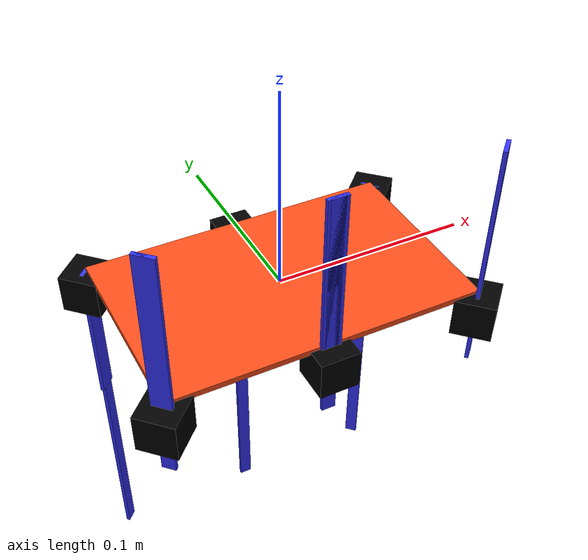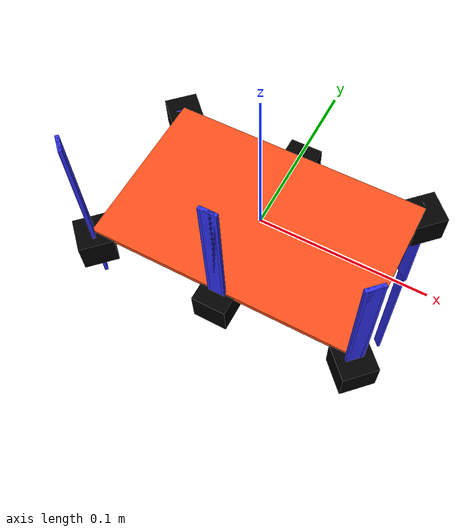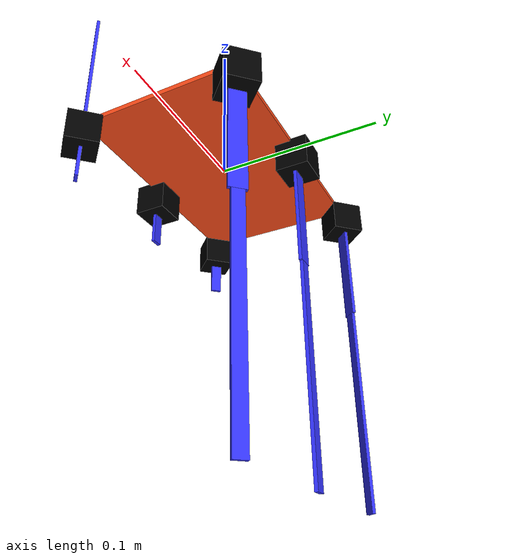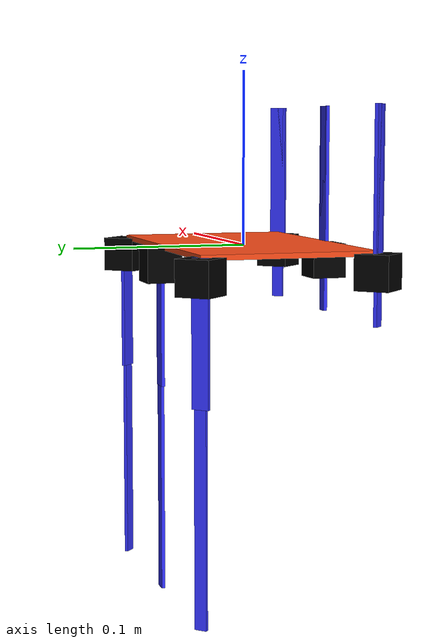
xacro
<?xml version="1.0"?>
<robot xmlns:xacro="http://www.ros.org/wiki/xacro" >

    <!-- INCLUDES -->
    <xacro:include filename="inertial_macros.urdf.xacro"/>
    <xacro:include filename="materials.urdf.xacro"/>
    <xacro:include filename="left_leg.urdf.xacro"/>
    <xacro:include filename="right_leg.urdf.xacro"/>

    <!-- CONSTANTS -->
    <xacro:property name="body_length" value="0.16"/>
    <xacro:property name="body_width" value="0.10"/>
    <xacro:property name="body_height" value="0.003"/>

    <xacro:property name="femur_length" value="0.08"/>
    <xacro:property name="tibia_length" value="0.12"/>
    <xacro:property name="angle_to_font" value="${pi/4}"/>

    <!-- BASE LINK -->
    <link name="base_link">
    </link>

    <!-- BODY LINK -->
    <joint name="body_joint" type="fixed">
        <parent link="base_link"/>
        <child link="body_link"/>
        <origin xyz="0 0 0"/>
    </joint>

    <link name="body_link">
        <visual>
            <origin xyz="0 0 0"/>
            <geometry>
                <box size="${body_length} ${body_width} ${body_height}"/>
            </geometry>
            <material name="orange"/>
        </visual>
        <collision>
            <origin xyz="0 0 0"/>
            <geometry>
                <box size="${body_length} ${body_width} ${body_height}"/>
            </geometry>
        </collision>
        <xacro:inertial_box mass="0.1" x="${body_length}" y="${body_width}" z="${body_height}">
            <origin xyz="0 0 0" rpy="0 0 0"/>
        </xacro:inertial_box>
    </link>

    <gazebo reference="body_link">
        <material>Gazebo/Orange</material>
    </gazebo>

    <!-- LEGS -->
    <xacro:right_leg name="leg0" parent="body_link">
            <origin xyz="${body_length/2} -${body_width/2} 0" rpy="0 0 ${pi + angle_to_font}"/>
    </xacro:right_leg>

    <xacro:right_leg name="leg1" parent="body_link">
            <origin xyz="0 -${body_width/2} 0" rpy="0 0 ${pi}"/>
    </xacro:right_leg>

    <xacro:right_leg name="leg2" parent="body_link">
            <origin xyz="-${body_length/2} -${body_width/2} 0" rpy="0 0 ${pi - angle_to_font}"/>
    </xacro:right_leg>

    <xacro:left_leg name="leg3" parent="body_link">
            <origin xyz="-${body_length/2} ${body_width/2} 0" rpy="0 0 ${angle_to_font}"/>
    </xacro:left_leg>

    <xacro:left_leg name="leg4" parent="body_link">
            <origin xyz="0 ${body_width/2} 0" rpy="0 0 0"/>
    </xacro:left_leg>

    <xacro:left_leg name="leg5" parent="body_link">
            <origin xyz="${body_length/2} ${body_width/2} 0" rpy="0 0 -${angle_to_font}"/>
    </xacro:left_leg>

</robot>

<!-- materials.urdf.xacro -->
<robot xmlns:xacro="http://www.ros.org/wiki/xacro"  name="robot">
    <material name="white">
        <color rgba="1 1 1 1" />
    </material>

    <material name="orange">
        <color rgba="1 0.3 0.1 1"/>
    </material>

    <material name="blue">
        <color rgba="0.2 0.2 1 1"/>
    </material>

    <material name="black">
        <color rgba="0 0 0 1"/>
    </material>

    <material name="red">
        <color rgba="1 0 0 1"/>
    </material>
</robot>

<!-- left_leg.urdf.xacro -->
<robot xmlns:xacro="http://www.ros.org/wiki/xacro">

    <xacro:macro name="left_leg" params="name parent *origin">

        <joint name="${name}/j0_joint" type="revolute">
            <parent link="${parent}"/>
            <xacro:insert_block name="origin"/>
            <child link="${name}/j0_link"/>
            <axis xyz="0 0 -1"/>
            <limit lower="0" upper="${pi}" velocity="100" effort="100"/>
        </joint>

        <link name="${name}/j0_link">
            <visual>
                <origin xyz="0 0 -0.01"/>
                <geometry>
                    <box size="0.02 0.02 0.02"/>
                </geometry>
                <material name="black"/>
            </visual>
            <collision>
                <origin xyz="0 0 -0.01"/>
                <geometry>
                    <box size="0.02 0.02 0.02"/>
                </geometry>
            </collision>
            <xacro:inertial_box mass="0.1" x="0.02" y="0.02" z="0.02">
                <origin xyz="0 0 0" rpy="0 0 0"/>
            </xacro:inertial_box>
        </link>

        <joint name="${name}/j1_joint" type="revolute">
            <parent link="${name}/j0_link"/>
            <child link="${name}/j1_link"/>
            <origin xyz="0 0 0" rpy="0 ${pi/2} 0"/>
            <axis xyz="0 1 0"/>
            <limit lower="0" upper="${pi}" velocity="100" effort="100"/>
        </joint>

        <link name="${name}/j1_link">
            <visual>
                <origin xyz="${femur_length/2} 0 0" rpy="${pi/2} 0 0"/>
                <geometry>
                    <box size="${femur_length} 0.01 0.002"/>
                </geometry>
                <material name="blue"/>
            </visual>
            <collision>
                <origin xyz="${femur_length/2} 0 0" rpy="${pi/2} 0 0"/>
                <geometry>
                    <box size="${femur_length} 0.01 0.002"/>
                </geometry>
            </collision>
            <xacro:inertial_box mass="0.1" x="${femur_length}" y="0.01" z="0.002">
                <origin xyz="${femur_length/2} 0 0" rpy="${pi/2} 0 0"/>
            </xacro:inertial_box>
        </link>

        <joint name="${name}/j2_joint" type="revolute">
            <parent link="${name}/j1_link"/>
            <child link="${name}/j2_link"/>
            <origin xyz="${femur_length} 0 0" rpy="0 0 0"/>
            <axis xyz="0 -1 0"/>
            <limit lower="0" upper="${pi}" velocity="100" effort="100"/>
        </joint>

        <link name="${name}/j2_link">
            <visual>
                <origin xyz="${tibia_length/2} 0 0" rpy="${pi/2} 0 0"/>
                <geometry>
                    <box size="${tibia_length} 0.007 0.002"/>
                </geometry>
                <material name="blue"/>
            </visual>
            <collision>
                <origin xyz="${tibia_length/2} 0 0" rpy="${pi/2} 0 0"/>
                <geometry>
                    <box size="${tibia_length} 0.007 0.002"/>
                </geometry>
            </collision>
            <xacro:inertial_box mass="0.1" x="${tibia_length}" y="0.007" z="0.002">
                <origin xyz="${tibia_length/2} 0 0" rpy="${pi/2} 0 0"/>
            </xacro:inertial_box>
        </link>

    </xacro:macro>
</robot>

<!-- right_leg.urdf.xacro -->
<robot xmlns:xacro="http://www.ros.org/wiki/xacro">

    <xacro:macro name="right_leg" params="name parent *origin">

        <joint name="${name}/j0_joint" type="revolute">
            <parent link="${parent}"/>
            <xacro:insert_block name="origin"/>
            <child link="${name}/j0_link"/>
            <axis xyz="0 0 -1"/>
            <limit lower="0" upper="${pi}" velocity="100" effort="100"/>
        </joint>

        <link name="${name}/j0_link">
            <visual>
                <origin xyz="0 0 -0.01"/>
                <geometry>
                    <box size="0.02 0.02 0.02"/>
                </geometry>
                <material name="black"/>
            </visual>
            <collision>
                <origin xyz="0 0 -0.01"/>
                <geometry>
                    <box size="0.02 0.02 0.02"/>
                </geometry>
            </collision>
            <xacro:inertial_box mass="0.1" x="0.02" y="0.02" z="0.02">
                <origin xyz="0 0 0" rpy="0 0 0"/>
            </xacro:inertial_box>
        </link>

        <joint name="${name}/j1_joint" type="revolute">
            <parent link="${name}/j0_link"/>
            <child link="${name}/j1_link"/>
            <origin xyz="0 0 0" rpy="0 -${pi/2} 0"/>
            <axis xyz="0 -1 0"/>
            <limit lower="0" upper="${pi}" velocity="100" effort="100"/>
        </joint>

        <link name="${name}/j1_link">
            <visual>
                <origin xyz="${femur_length/2} 0 0" rpy="${pi/2} 0 0"/>
                <geometry>
                    <box size="${femur_length} 0.01 0.002"/>
                </geometry>
                <material name="blue"/>
            </visual>
            <collision>
                <origin xyz="${femur_length/2} 0 0" rpy="${pi/2} 0 0"/>
                <geometry>
                    <box size="${femur_length} 0.01 0.002"/>
                </geometry>
            </collision>
            <xacro:inertial_box mass="0.1" x="${femur_length}" y="0.01" z="0.002">
                <origin xyz="${femur_length/2} 0 0" rpy="${pi/2} 0 0"/>
            </xacro:inertial_box>
        </link>

        <joint name="${name}/j2_joint" type="revolute">
            <parent link="${name}/j1_link"/>
            <child link="${name}/j2_link"/>
            <origin xyz="${femur_length} 0 0" rpy="0 -${pi} 0"/>
            <axis xyz="0 1 0"/>
            <limit lower="0" upper="${pi}" velocity="100" effort="100"/>
        </joint>

        <link name="${name}/j2_link">
            <visual>
                <origin xyz="${tibia_length/2} 0 0" rpy="${pi/2} 0 0"/>
                <geometry>
                    <box size="${tibia_length} 0.007 0.002"/>
                </geometry>
                <material name="blue"/>
            </visual>
            <collision>
                <origin xyz="${tibia_length/2} 0 0" rpy="${pi/2} 0 0"/>
                <geometry>
                    <box size="${tibia_length} 0.007 0.002"/>
                </geometry>
            </collision>
            <xacro:inertial_box mass="0.1" x="${tibia_length}" y="0.007" z="0.002">
                <origin xyz="${tibia_length/2} 0 0" rpy="${pi/2} 0 0"/>
            </xacro:inertial_box>
        </link>

    </xacro:macro>
</robot>
